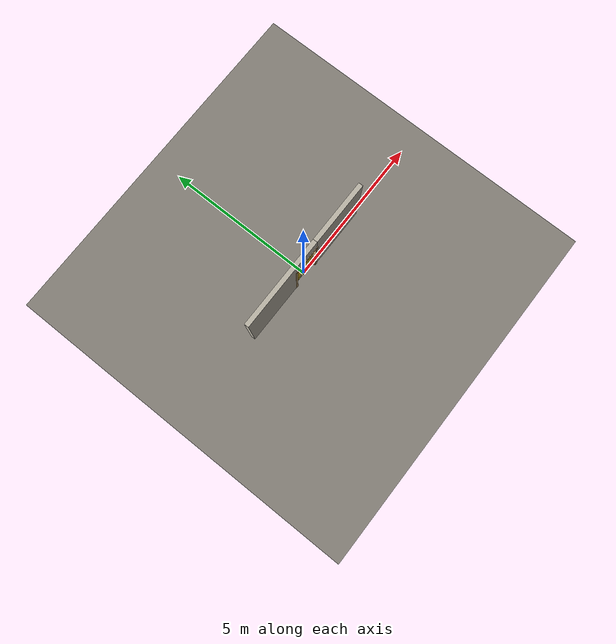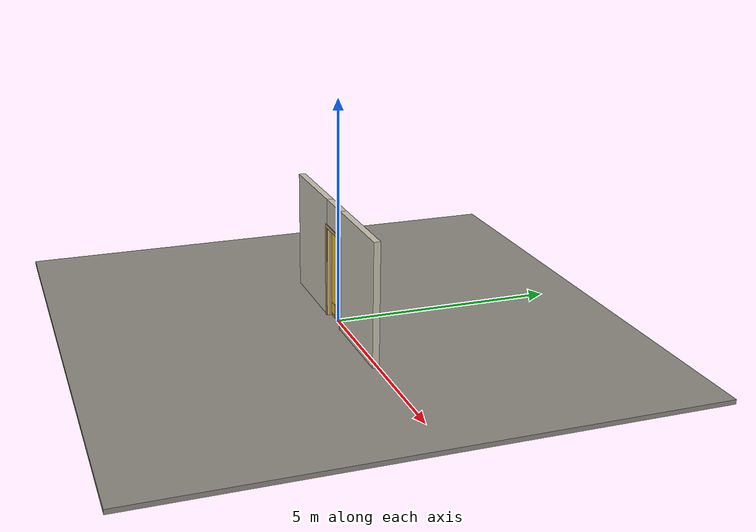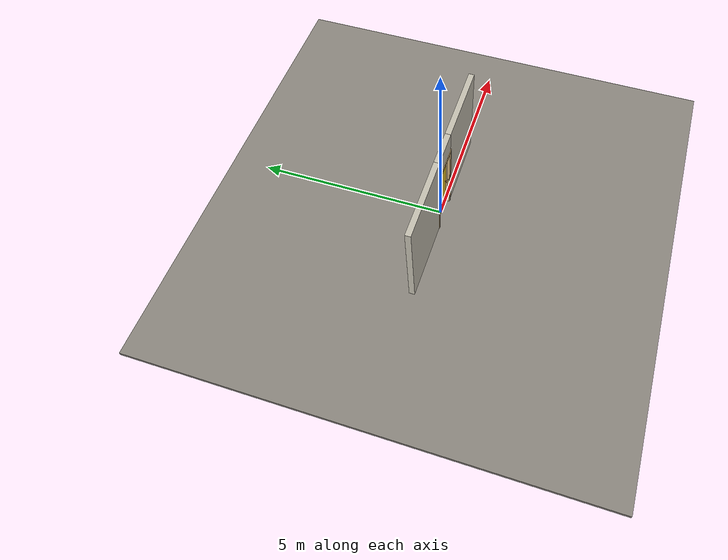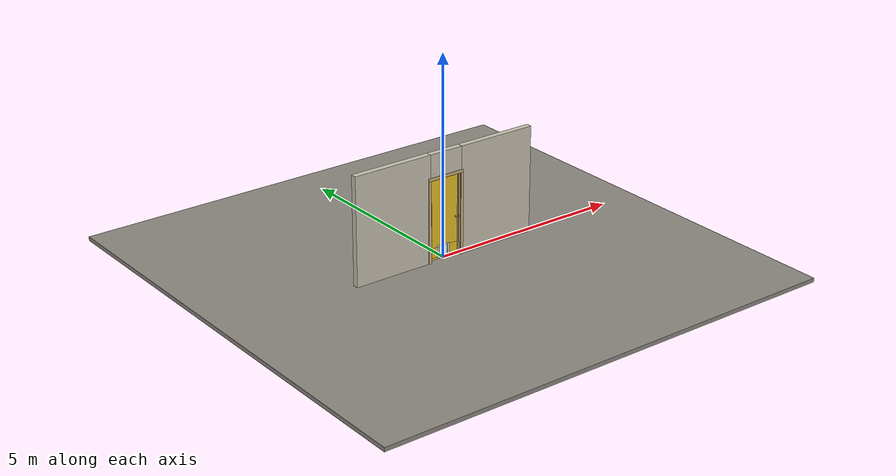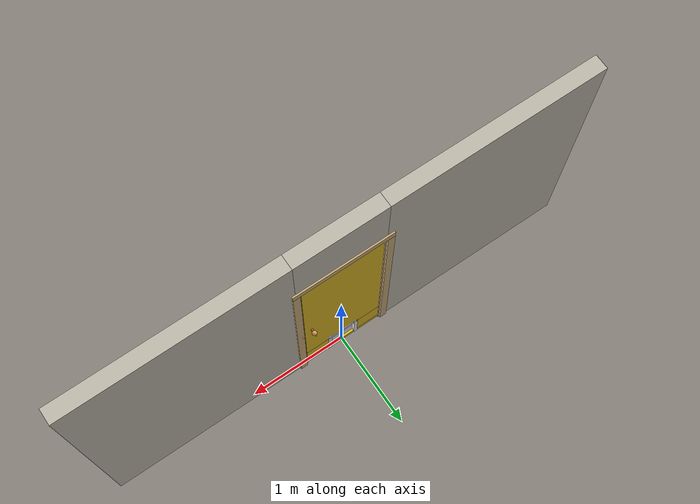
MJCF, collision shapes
<?xml version="1.0" ?>
<mujoco model="db0592_swing_single_full">
  <compiler angle="radian" meshdir="../../hardware" texturedir="../../textures" autolimits="true" inertiafromgeom="false"/>
  <option timestep="0.002" integrator="implicitfast" cone="elliptic" impratio="10" noslip_iterations="3">
    <flag multiccd="enable"/>
  </option>
  <size memory="16M"/>
  <default>
    <geom condim="4" solref="0.005 1" solimp="0.95 0.99 0.001"/>
    <joint solreflimit="0.005 1" solimplimit="0.95 0.99 0.001"/>
    <tendon solreflimit="0.005 1"/>
    <equality solref="0.002 1"/>
  </default>
  <visual>
    <headlight ambient="0.4 0.4 0.4" diffuse="0.7 0.7 0.7" specular="0.2 0.2 0.2"/>
    <quality shadowsize="4096"/>
    <map znear="0.01" zfar="60"/>
  </visual>
  <asset>
    <mesh name="hinge_e22b26c0c1" file="hinge_e22b26c0c1.obj"/>
    <mesh name="hinge_jamb_e1d088f8dc" file="hinge_jamb_e1d088f8dc.obj"/>
    <mesh name="knob_d1888f6f03" file="knob_d1888f6f03.obj"/>
    <material name="mat_floor" rgba="0.55 0.53 0.5 1" specular="0.2" shininess="0.15" reflectance="0"/>
    <material name="mat_wall" rgba="0.78 0.76 0.7 1" specular="0.2" shininess="0.1" reflectance="0"/>
    <material name="mat_leaf" rgba="0.9 0.75 0.15 1" specular="0.2" shininess="0.34" reflectance="0"/>
    <material name="mat_glass" rgba="0.85 0.92 0.95 0.25" specular="0.2" shininess="0.95" reflectance="0.1"/>
    <material name="mat_hinge" rgba="0.65 0.66 0.68 1" specular="0.74" shininess="0.5" reflectance="0.36"/>
    <material name="mat_op_brass" rgba="0.85 0.66 0.3 1" specular="0.8" shininess="0.75" reflectance="0.4"/>
    <material name="mat_trim" rgba="0.85 0.66 0.3 1" specular="0.8" shininess="0.75" reflectance="0.4"/>
    <material name="mat_keyway" rgba="0.05 0.05 0.05 1" specular="0.2" shininess="0.5" reflectance="0"/>
    <material name="mat_bolt" rgba="0.85 0.66 0.3 1" specular="0.8" shininess="0.75" reflectance="0.4"/>
    <material name="mat_frame" rgba="0.82 0.7 0.5 1" specular="0.2" shininess="0.45" reflectance="0"/>
    <material name="mat_seal" rgba="0.1 0.1 0.1 1" specular="0.2" shininess="0.1" reflectance="0"/>
    <material name="mat_transom" rgba="0.85 0.92 0.95 0.25" specular="0.2" shininess="0.95" reflectance="0.1"/>
    <material name="mat_petframe" rgba="0.92 0.92 0.9 1" specular="0.2" shininess="0.6" reflectance="0"/>
    <material name="mat_petflap" rgba="0.85 0.9 0.95 0.45" specular="0.2" shininess="0.7" reflectance="0.1"/>
    <texture name="skybox" type="skybox" builtin="gradient" rgb1="0.6 0.7 0.85" rgb2="0.9 0.92 0.95" width="256" height="256"/>
  </asset>
  <worldbody>
    <light name="sun" pos="1.5 -2.5 4" dir="-0.3 0.5 -0.8" directional="true" diffuse="0.8 0.8 0.8" specular="0.3 0.3 0.3" castshadow="true"/>
    <light name="fill" pos="-1.5 2.5 3" dir="0.3 -0.5 -0.7" directional="true" diffuse="0.35 0.35 0.4" castshadow="false"/>
    <camera name="robot_view" pos="0 -2.585687 1.734312" xyaxes="1 0 0 0 0.26963 0.962964" fovy="52"/>
    <camera name="far_view" pos="0 2.498687 1.734312" xyaxes="-1 0 0 0 -0.26963 0.962964" fovy="52"/>
    <camera name="iso" pos="1.932062 -2.178937 2.141063" xyaxes="0.741536 0.670913 0 -0.242917 0.268487 0.932151" fovy="46"/>
    <camera name="detail_handle" pos="0.5155 -0.8685 1.245" xyaxes="0.97561 0.219512 0 -0.070934 0.315262 0.94635" fovy="38"/>
    <geom name="floor" type="box" size="6 6 0.05" pos="0 0 -0.05" material="mat_floor" group="0" contype="1" conaffinity="1" friction="0.8 0.005 0.0001" density="2400"/>
    <geom name="wall_left" type="box" size="1.03525 0.0725 1.35" pos="-1.46475 -0.0435 1.35" material="mat_wall" group="0" contype="1" conaffinity="1" friction="0.6 0.005 0.0001" density="800"/>
    <geom name="wall_right" type="box" size="1.02025 0.0725 1.35" pos="1.47975 -0.0435 1.35" material="mat_wall" group="0" contype="1" conaffinity="1" friction="0.6 0.005 0.0001" density="800"/>
    <geom name="wall_header" type="box" size="0.4445 0.0725 0.303" pos="0.015 -0.0435 2.397" material="mat_wall" group="0" contype="1" conaffinity="1" friction="0.6 0.005 0.0001" density="800"/>
    <geom name="hinge_0_jamb" type="mesh" mesh="hinge_jamb_e1d088f8dc" pos="-0.4075 0.029 0.259" quat="0 1 0 0" material="mat_hinge" group="1" contype="0" conaffinity="0" density="7850"/>
    <geom name="hinge_1_jamb" type="mesh" mesh="hinge_jamb_e1d088f8dc" pos="-0.4075 0.029 1.025" quat="0 1 0 0" material="mat_hinge" group="1" contype="0" conaffinity="0" density="7850"/>
    <geom name="hinge_2_jamb" type="mesh" mesh="hinge_jamb_e1d088f8dc" pos="-0.4075 0.029 1.861" quat="0 1 0 0" material="mat_hinge" group="1" contype="0" conaffinity="0" density="7850"/>
    <geom name="jamb_hinge" type="box" size="0.0095 0.0725 1.0225" pos="-0.42 -0.0435 1.0225" material="mat_frame" group="0" contype="1" conaffinity="1" friction="0.6 0.005 0.0001" density="400"/>
    <geom name="strike_965_wall_n" type="box" size="0.0245 0.05325 0.0183" pos="0.435 -0.06275 0.965" material="mat_frame" group="0" contype="1" conaffinity="1" friction="0.6 0.005 0.0001" density="400"/>
    <geom name="strike_965_wall_p" type="box" size="0.0245 0.008 0.0183" pos="0.435 0.0175 0.965" material="mat_frame" group="0" contype="1" conaffinity="1" friction="0.6 0.005 0.0001" density="400"/>
    <geom name="strike_965_ramp" type="box" size="0.0245 0.018028 0.0183" pos="0.440885 0.02691 0.965" quat="0.957092 0 0 -0.289784" material="mat_frame" group="0" contype="1" conaffinity="1" friction="0.12 0.005 0.0001" density="400"/>
    <geom name="strike_965_back" type="box" size="0.013 0.0095 0.0183" pos="0.4465 0 0.965" material="mat_frame" group="0" contype="1" conaffinity="1" friction="0.6 0.005 0.0001" density="400"/>
    <geom name="jamb_strike_0" type="box" size="0.0245 0.0725 0.47335" pos="0.435 -0.0435 0.47335" material="mat_frame" group="0" contype="1" conaffinity="1" friction="0.6 0.005 0.0001" density="400"/>
    <geom name="jamb_strike_1" type="box" size="0.0245 0.0725 0.53085" pos="0.435 -0.0435 1.51415" material="mat_frame" group="0" contype="1" conaffinity="1" friction="0.6 0.005 0.0001" density="400"/>
    <geom name="jamb_head" type="box" size="0.4445 0.0725 0.0095" pos="0.015 -0.0435 2.0545" material="mat_frame" group="0" contype="1" conaffinity="1" friction="0.6 0.005 0.0001" density="400"/>
    <geom name="head_stud" type="box" size="0.4445 0.0725 0.015" pos="0.015 -0.0435 2.079" material="mat_wall" group="0" contype="1" conaffinity="1" friction="0.6 0.005 0.0001" density="500"/>
    <geom name="stop_hinge" type="box" size="0.0055 0.016 1.0225" pos="-0.405 -0.0385 1.0225" material="mat_frame" group="0" contype="1" conaffinity="1" friction="0.6 0.005 0.0001" density="400"/>
    <geom name="stop_strike" type="box" size="0.0055 0.016 1.0225" pos="0.405 -0.0385 1.0225" material="mat_frame" group="0" contype="1" conaffinity="1" friction="0.6 0.005 0.0001" density="400"/>
    <geom name="stop_head" type="box" size="0.4105 0.016 0.0055" pos="0 -0.0385 2.0395" material="mat_frame" group="0" contype="1" conaffinity="1" friction="0.6 0.005 0.0001" density="400"/>
    <geom name="seal_hinge" type="box" size="0.004 0.004 1.0225" pos="-0.4075 -0.026 1.0225" material="mat_seal" group="1" contype="0" conaffinity="0" density="1100"/>
    <geom name="seal_strike" type="box" size="0.004 0.004 1.0225" pos="0.4075 -0.026 1.0225" material="mat_seal" group="1" contype="0" conaffinity="0" density="1100"/>
    <geom name="seal_head" type="box" size="0.3905 0.004 0.008" pos="0 -0.026 2.033" material="mat_seal" group="1" contype="0" conaffinity="0" density="1100"/>
    <geom name="casing_l_n" type="box" size="0.035 0.008 1.032" pos="-0.4595 -0.124 1.0225" material="mat_frame" group="2" contype="0" conaffinity="0" density="400"/>
    <geom name="casing_r_n" type="box" size="0.035 0.008 1.032" pos="0.4595 -0.124 1.0225" material="mat_frame" group="2" contype="0" conaffinity="0" density="400"/>
    <geom name="casing_h_n" type="box" size="0.4945 0.008 0.035" pos="0 -0.124 2.094" material="mat_frame" group="2" contype="0" conaffinity="0" density="400"/>
    <geom name="casing_l_p" type="box" size="0.035 0.008 1.032" pos="-0.4595 0.037 1.0225" material="mat_frame" group="2" contype="0" conaffinity="0" density="400"/>
    <geom name="casing_r_p" type="box" size="0.035 0.008 1.032" pos="0.4595 0.037 1.0225" material="mat_frame" group="2" contype="0" conaffinity="0" density="400"/>
    <geom name="casing_h_p" type="box" size="0.4945 0.008 0.035" pos="0 0.037 2.094" material="mat_frame" group="2" contype="0" conaffinity="0" density="400"/>
    <geom name="transom_glass" type="box" size="0.4105 0.003 0.18" pos="0 0 2.295" material="mat_transom" group="0" contype="1" conaffinity="1" friction="0.6 0.005 0.0001" density="2500"/>
    <site name="approach_point" pos="0 -1.5 0" quat="1 0 0 0" size="0.05" rgba="0.2 0.9 0.2 0.5" group="4"/>
    <site name="goal_point" pos="0 1.5 0" quat="1 0 0 0" size="0.05" rgba="0.2 0.9 0.2 0.5" group="4"/>
    <site name="door_plane_center" pos="0 0 1.0225" quat="1 0 0 0" size="0.02" rgba="0.2 0.9 0.2 0.5" group="4"/>
    <body name="leaf" pos="-0.4105 0 0">
      <inertial pos="0.38033 0.001314 0.83467" mass="24.857503" quat="-0.492739 0.49768 0.502599 0.506871" diaginertia="1.334244895 9.542234384 10.865993885"/>
      <joint name="leaf_hinge" type="hinge" axis="0 0 1" pos="0.003 0.029 0" limited="true" range="0 1.919862" solreflimit="0.02 1" damping="0.210326" frictionloss="1.588611" armature="0.02"/>
      <geom name="leaf_slab_below" type="box" size="0.4065 0.022 0.0245" pos="0.4095 0 0.0335" material="mat_leaf" group="0" contype="1" conaffinity="1" friction="0.4 0.005 0.0001" density="1"/>
      <geom name="leaf_slab_above" type="box" size="0.4065 0.022 0.8655" pos="0.4095 0 1.1755" material="mat_leaf" group="0" contype="1" conaffinity="1" friction="0.4 0.005 0.0001" density="1"/>
      <geom name="leaf_slab_left" type="box" size="0.14025 0.022 0.126" pos="0.14325 0 0.184" material="mat_leaf" group="0" contype="1" conaffinity="1" friction="0.4 0.005 0.0001" density="1"/>
      <geom name="leaf_slab_right" type="box" size="0.14025 0.022 0.126" pos="0.67575 0 0.184" material="mat_leaf" group="0" contype="1" conaffinity="1" friction="0.4 0.005 0.0001" density="1"/>
      <geom name="hinge_0" type="mesh" mesh="hinge_e22b26c0c1" pos="0.003 0.029 0.259" quat="0 1 0 0" material="mat_hinge" group="1" contype="0" conaffinity="0" density="7850"/>
      <geom name="hinge_1" type="mesh" mesh="hinge_e22b26c0c1" pos="0.003 0.029 1.025" quat="0 1 0 0" material="mat_hinge" group="1" contype="0" conaffinity="0" density="7850"/>
      <geom name="hinge_2" type="mesh" mesh="hinge_e22b26c0c1" pos="0.003 0.029 1.861" quat="0 1 0 0" material="mat_hinge" group="1" contype="0" conaffinity="0" density="7850"/>
      <geom name="leaf_latch_bolt_faceplate" type="box" size="0.0006 0.014 0.0283" pos="0.8154 0 0.965" material="mat_bolt" group="1" contype="0" conaffinity="0" density="8500"/>
      <geom name="pet_frame_top" type="box" size="0.165 0.028 0.02" pos="0.4095 0 0.329" material="mat_petframe" group="2" contype="0" conaffinity="0" density="1200"/>
      <geom name="pet_frame_l" type="box" size="0.02 0.028 0.165" pos="0.2645 0 0.184" material="mat_petframe" group="2" contype="0" conaffinity="0" density="1200"/>
      <geom name="pet_frame_r" type="box" size="0.02 0.028 0.165" pos="0.5545 0 0.184" material="mat_petframe" group="2" contype="0" conaffinity="0" density="1200"/>
      <site name="leaf_edge_mid" pos="0.816 0 1.016" quat="1 0 0 0" size="0.02" rgba="0.2 0.9 0.2 0.5" group="4"/>
      <body name="leaf_handle" pos="0.746 0 0.965">
        <inertial pos="0 0.000049 0" mass="1.16269" quat="0.5 -0.5 0.5 -0.5" diaginertia="0.000312763 0.00435664 0.004356644"/>
        <joint name="leaf_handle_hinge" type="hinge" axis="0 -1 0" limited="true" range="0 0.87" damping="0.143616" frictionloss="0.038" stiffness="0.5" springref="-0.5" armature="0.01"/>
        <geom name="leaf_handle_spindle" type="cylinder" size="0.006 0.03" pos="0 0 0" quat="0.707107 -0.707107 0 0" material="mat_op_brass" group="1" contype="0" conaffinity="0" density="7850"/>
        <geom name="leaf_handle_knob_n" type="mesh" mesh="knob_d1888f6f03" pos="0 -0.022 0" quat="0.707107 0.707107 0 0" material="mat_op_brass" group="1" contype="0" conaffinity="0" density="3000"/>
        <geom name="leaf_handle_knob_col_n" type="sphere" size="0.0243" pos="0 -0.0685 0" material="mat_op_brass" group="0" contype="1" conaffinity="1" friction="0.9 0.01 0.0001" density="3000"/>
        <geom name="leaf_handle_knob_neck_n" type="cylinder" size="0.011 0.012" pos="0 -0.034 0" quat="0.707107 -0.707107 0 0" material="mat_op_brass" group="3" contype="1" conaffinity="1" rgba="0.8 0.3 0.3 0.25" friction="0.6 0.005 0.0001" density="3000"/>
        <geom name="leaf_handle_cylinder_n" type="cylinder" size="0.0085 0.0015" pos="0 -0.0906 0" quat="0.707107 -0.707107 0 0" material="mat_trim" group="1" contype="0" conaffinity="0" density="7100"/>
        <geom name="leaf_handle_keyway_n" type="box" size="0.0012 0.0008 0.006" pos="0 -0.0926 0" material="mat_keyway" group="1" contype="0" conaffinity="0" density="7100"/>
        <geom name="leaf_handle_knob_p" type="mesh" mesh="knob_d1888f6f03" pos="0 0.022 0" quat="-0.707107 0.707107 0 0" material="mat_op_brass" group="1" contype="0" conaffinity="0" density="3000"/>
        <geom name="leaf_handle_knob_col_p" type="sphere" size="0.0243" pos="0 0.0685 0" material="mat_op_brass" group="0" contype="1" conaffinity="1" friction="0.9 0.01 0.0001" density="3000"/>
        <geom name="leaf_handle_knob_neck_p" type="cylinder" size="0.011 0.012" pos="0 0.034 0" quat="0.707107 -0.707107 0 0" material="mat_op_brass" group="3" contype="1" conaffinity="1" rgba="0.8 0.3 0.3 0.25" friction="0.6 0.005 0.0001" density="3000"/>
        <geom name="leaf_handle_turn_button_p" type="cylinder" size="0.005 0.005" pos="0 0.0941 0" quat="0.707107 -0.707107 0 0" material="mat_trim" group="1" contype="0" conaffinity="0" density="7100"/>
        <site name="leaf_handle_grip_n" pos="0 -0.0685 0" quat="1 0 0 0" size="0.012" rgba="0.2 0.9 0.2 0.5" group="4"/>
        <site name="leaf_handle_grip_p" pos="0 0.0685 0" quat="1 0 0 0" size="0.012" rgba="0.2 0.9 0.2 0.5" group="4"/>
      </body>
      <body name="leaf_latch_bolt" pos="0.816 0 0.965">
        <inertial pos="-0.0055 0 0" mass="0.074627" quat="0.92388 -0.382683 0 0" diaginertia="0.000002271 0.000013255 0.000013255"/>
        <joint name="leaf_latch_bolt_slide" type="slide" axis="-1 0 0" limited="true" range="0 0.019" damping="2" frictionloss="0.3" stiffness="600" springref="-0.01" armature="0.1"/>
        <geom name="leaf_latch_bolt_capsule" type="capsule" size="0.008 0.0165" pos="-0.0055 0 0" quat="0.707107 0 0.707107 0" material="mat_bolt" group="0" contype="1" conaffinity="1" friction="0.2 0.005 0.0001" density="8500"/>
      </body>
      <body name="pet_flap" pos="0.4095 0 0.309">
        <inertial pos="0 0 -0.125" mass="0.080644" quat="0 0 0.707107 0.707107" diaginertia="0.000393679 0.000393679 0.000787144"/>
        <joint name="pet_flap_hinge" type="hinge" axis="1 0 0" limited="true" range="-1.45 1.45" damping="0.02" frictionloss="0.02" armature="0.005"/>
        <geom name="pet_flap_geom" type="box" size="0.121 0.002 0.121" pos="0 0 -0.125" material="mat_petflap" group="0" contype="1" conaffinity="1" friction="0.6 0.005 0.0001" density="1250"/>
      </body>
    </body>
  </worldbody>
  <tendon>
    <fixed name="leaf_latch_bolt_coupling" limited="true" range="0 10">
      <joint joint="leaf_latch_bolt_slide" coef="1"/>
      <joint joint="leaf_handle_hinge" coef="-0.023457"/>
    </fixed>
  </tendon>
  <sensor>
    <jointpos name="leaf_hinge_pos" joint="leaf_hinge"/>
    <jointvel name="leaf_hinge_vel" joint="leaf_hinge"/>
    <jointpos name="leaf_handle_hinge_pos" joint="leaf_handle_hinge"/>
    <jointvel name="leaf_handle_hinge_vel" joint="leaf_handle_hinge"/>
    <jointpos name="leaf_latch_bolt_slide_pos" joint="leaf_latch_bolt_slide"/>
    <jointvel name="leaf_latch_bolt_slide_vel" joint="leaf_latch_bolt_slide"/>
    <jointpos name="pet_flap_hinge_pos" joint="pet_flap_hinge"/>
    <jointvel name="pet_flap_hinge_vel" joint="pet_flap_hinge"/>
  </sensor>
</mujoco>
